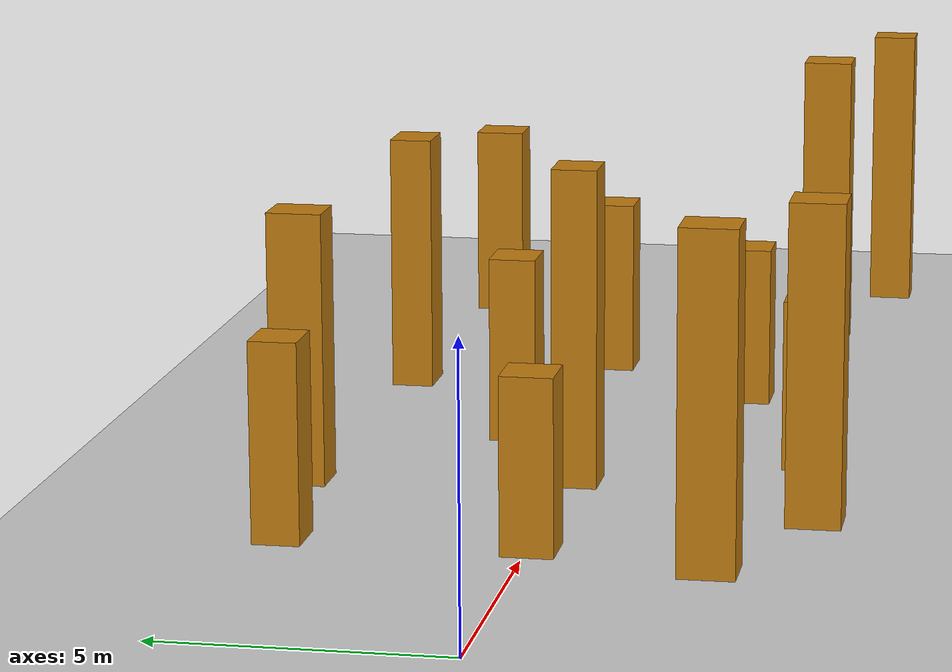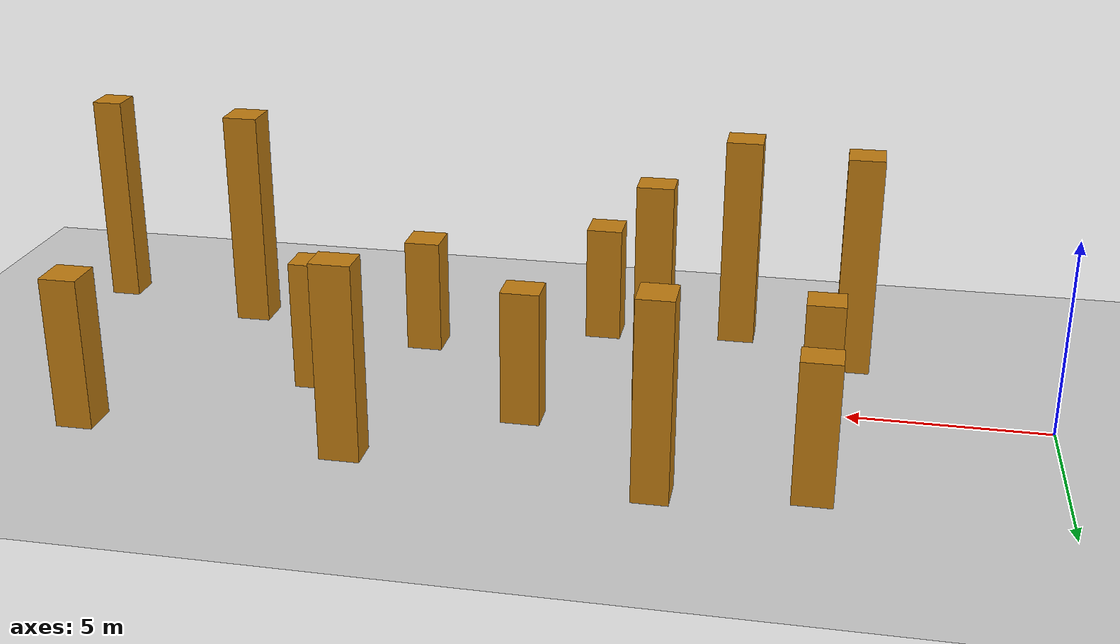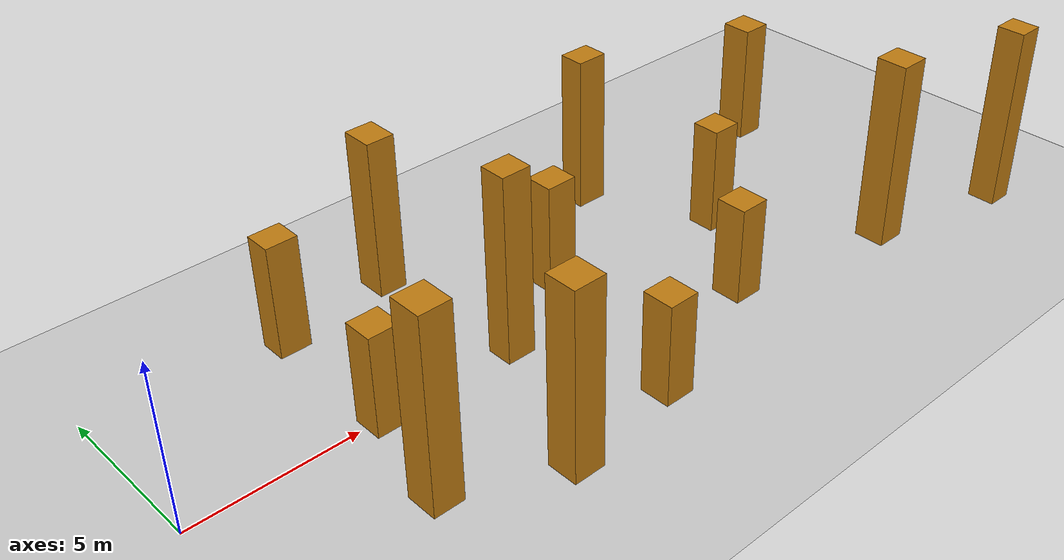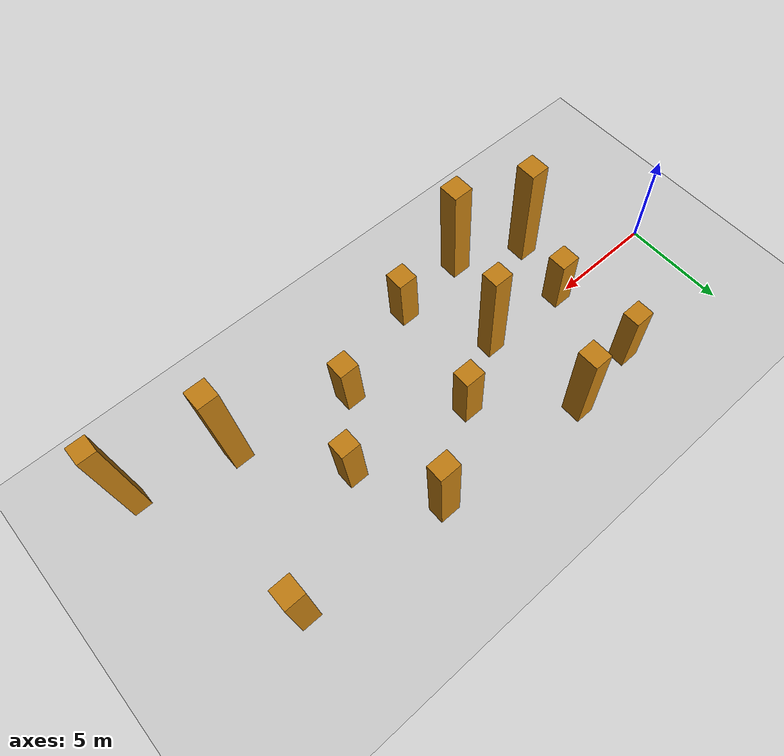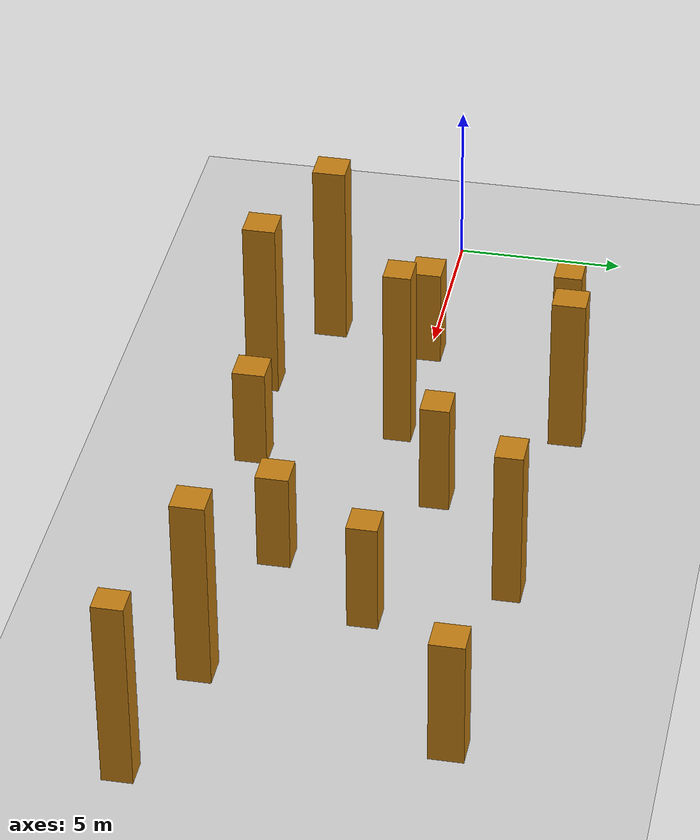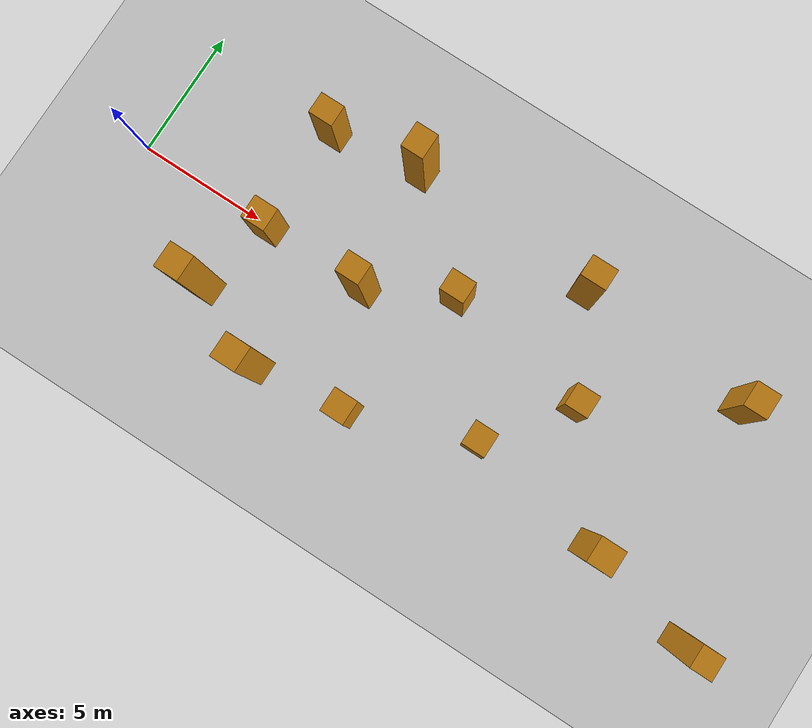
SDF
<sdf version="1.7">
 <world name="default">
  <light name="sun" type="directional">
   <pose>0 0 10 0 -0 0</pose>
   <diffuse>0.8 0.8 0.8 1</diffuse>
   <specular>0.2 0.2 0.2 1</specular>
   <attenuation>
    <range>1000</range>
    <constant>0.9</constant>
    <linear>0.01</linear>
    <quadratic>0.001</quadratic>
   </attenuation>
   <direction>-0.5 0.1 -0.9</direction>
   <spot><inner_angle>0</inner_angle><outer_angle>0</outer_angle><falloff>0</falloff></spot>
  </light>
  <model name="ground_plane">
   <static>1</static>
   <link name="link">
    <collision name="collision">
     <geometry><plane><normal>0 0 1</normal><size>100 100</size></plane></geometry>
     <surface>
      <contact><collide_bitmask>65535</collide_bitmask></contact>
      <friction><ode><mu>100</mu><mu2>50</mu2></ode></friction>
     </surface>
    </collision>
    <visual name="visual">
     <cast_shadows>0</cast_shadows>
     <geometry><plane><normal>0 0 1</normal><size>100 100</size></plane></geometry>
     <material>
      <script><uri>file://media/materials/scripts/gazebo.material</uri><name>Gazebo/Grey</name></script>
     </material>
    </visual>
   </link>
  </model>
  <gravity>0 0 -9.8</gravity>
  <magnetic_field>6e-06 2.3e-05 -4.2e-05</magnetic_field>
  <atmosphere type="adiabatic"/>
  <physics type="ode">
   <max_step_size>0.001</max_step_size>
   <real_time_factor>1</real_time_factor>
   <real_time_update_rate>1000</real_time_update_rate>
  </physics>
  <scene><ambient>0.4 0.4 0.4 1</ambient><background>0.7 0.7 0.7 1</background><shadows>1</shadows></scene>
  <spherical_coordinates>
   <surface_model>EARTH_WGS84</surface_model>
   <latitude_deg>0</latitude_deg>
   <longitude_deg>0</longitude_deg>
   <elevation>0</elevation>
   <heading_deg>0</heading_deg>
  </spherical_coordinates>
  <plugin name="gazebo_octomap" filename="libBuildOctomapPlugin.so"/>
  <model name="model0">
   <link name="link">
    <inertial>
     <mass>1</mass>
     <inertia>
      <ixx>0.166667</ixx>
      <ixy>0</ixy>
      <ixz>0</ixz>
      <iyy>0.166667</iyy>
      <iyz>0</iyz>
      <izz>0.166667</izz>
     </inertia>
    </inertial>
    <visual name="visual">
     <geometry><box><size>0.9245468864348694 0.9799685357493607 5.8250507621969785</size></box></geometry>
     <material>
      <script><name>Gazebo/Grey</name><uri>file://media/materials/scripts/gazebo.material</uri></script>
      <shader type="pixel"><normal_map>__default__</normal_map></shader>
      <ambient>0.757 0.49 0.067 1</ambient>
      <diffuse>0.7 0.7 0.7 1</diffuse>
      <specular>0.01 0.01 0.01 1</specular>
      <emissive>0 0 0 1</emissive>
     </material>
    </visual>
    <collision name="collision">
     <geometry><box><size>0.9245468864348694 0.9799685357493607 5.8250507621969785</size></box></geometry>
     <surface>
      <friction>
       <ode><mu>1</mu><mu2>1</mu2><fdir1>0 0 0</fdir1><slip1>0</slip1><slip2>0</slip2></ode>
       <torsional>
        <coefficient>1</coefficient>
        <patch_radius>0</patch_radius>
        <surface_radius>0</surface_radius>
        <use_patch_radius>1</use_patch_radius>
        <ode><slip>0</slip></ode>
       </torsional>
      </friction>
      <bounce><restitution_coefficient>0</restitution_coefficient><threshold>1e+06</threshold></bounce>
      <contact>
       <collide_without_contact>0</collide_without_contact>
       <collide_without_contact_bitmask>1</collide_without_contact_bitmask>
       <collide_bitmask>1</collide_bitmask>
       <ode>
        <soft_cfm>0</soft_cfm>
        <soft_erp>0.2</soft_erp>
        <kp>1e+13</kp>
        <kd>1</kd>
        <max_vel>0.01</max_vel>
        <min_depth>0</min_depth>
       </ode>
       <bullet>
        <split_impulse>1</split_impulse>
        <split_impulse_penetration_threshold>-0.01</split_impulse_penetration_threshold>
        <soft_cfm>0</soft_cfm>
        <soft_erp>0.2</soft_erp>
        <kp>1e+13</kp>
        <kd>1</kd>
       </bullet>
      </contact>
     </surface>
    </collision>
   </link>
   <static>0</static>
   <pose>4.91657127349023 -3.149675235952216 2.9125253810984892 0.0 0.0 0.0</pose>
  </model>
  <model name="model1">
   <link name="link">
    <inertial>
     <mass>1</mass>
     <inertia>
      <ixx>0.166667</ixx>
      <ixy>0</ixy>
      <ixz>0</ixz>
      <iyy>0.166667</iyy>
      <iyz>0</iyz>
      <izz>0.166667</izz>
     </inertia>
    </inertial>
    <visual name="visual">
     <geometry><box><size>0.8094975931079442 0.8614908476364517 5.785670933126569</size></box></geometry>
     <material>
      <script><name>Gazebo/Grey</name><uri>file://media/materials/scripts/gazebo.material</uri></script>
      <shader type="pixel"><normal_map>__default__</normal_map></shader>
      <ambient>0.757 0.49 0.067 1</ambient>
      <diffuse>0.7 0.7 0.7 1</diffuse>
      <specular>0.01 0.01 0.01 1</specular>
      <emissive>0 0 0 1</emissive>
     </material>
    </visual>
    <collision name="collision">
     <geometry><box><size>0.8094975931079442 0.8614908476364517 5.785670933126569</size></box></geometry>
     <surface>
      <friction>
       <ode><mu>1</mu><mu2>1</mu2><fdir1>0 0 0</fdir1><slip1>0</slip1><slip2>0</slip2></ode>
       <torsional>
        <coefficient>1</coefficient>
        <patch_radius>0</patch_radius>
        <surface_radius>0</surface_radius>
        <use_patch_radius>1</use_patch_radius>
        <ode><slip>0</slip></ode>
       </torsional>
      </friction>
      <bounce><restitution_coefficient>0</restitution_coefficient><threshold>1e+06</threshold></bounce>
      <contact>
       <collide_without_contact>0</collide_without_contact>
       <collide_without_contact_bitmask>1</collide_without_contact_bitmask>
       <collide_bitmask>1</collide_bitmask>
       <ode>
        <soft_cfm>0</soft_cfm>
        <soft_erp>0.2</soft_erp>
        <kp>1e+13</kp>
        <kd>1</kd>
        <max_vel>0.01</max_vel>
        <min_depth>0</min_depth>
       </ode>
       <bullet>
        <split_impulse>1</split_impulse>
        <split_impulse_penetration_threshold>-0.01</split_impulse_penetration_threshold>
        <soft_cfm>0</soft_cfm>
        <soft_erp>0.2</soft_erp>
        <kp>1e+13</kp>
        <kd>1</kd>
       </bullet>
      </contact>
     </surface>
    </collision>
   </link>
   <static>0</static>
   <pose>25.97113430020224 -4.56200326462055 2.8928354665632847 0.0 0.0 0.0</pose>
  </model>
  <model name="model2">
   <link name="link">
    <inertial>
     <mass>1</mass>
     <inertia>
      <ixx>0.166667</ixx>
      <ixy>0</ixy>
      <ixz>0</ixz>
      <iyy>0.166667</iyy>
      <iyz>0</iyz>
      <izz>0.166667</izz>
     </inertia>
    </inertial>
    <visual name="visual">
     <geometry><box><size>0.9304323894319075 0.954891832380665 5.882199779048345</size></box></geometry>
     <material>
      <script><name>Gazebo/Grey</name><uri>file://media/materials/scripts/gazebo.material</uri></script>
      <shader type="pixel"><normal_map>__default__</normal_map></shader>
      <ambient>0.757 0.49 0.067 1</ambient>
      <diffuse>0.7 0.7 0.7 1</diffuse>
      <specular>0.01 0.01 0.01 1</specular>
      <emissive>0 0 0 1</emissive>
     </material>
    </visual>
    <collision name="collision">
     <geometry><box><size>0.9304323894319075 0.954891832380665 5.882199779048345</size></box></geometry>
     <surface>
      <friction>
       <ode><mu>1</mu><mu2>1</mu2><fdir1>0 0 0</fdir1><slip1>0</slip1><slip2>0</slip2></ode>
       <torsional>
        <coefficient>1</coefficient>
        <patch_radius>0</patch_radius>
        <surface_radius>0</surface_radius>
        <use_patch_radius>1</use_patch_radius>
        <ode><slip>0</slip></ode>
       </torsional>
      </friction>
      <bounce><restitution_coefficient>0</restitution_coefficient><threshold>1e+06</threshold></bounce>
      <contact>
       <collide_without_contact>0</collide_without_contact>
       <collide_without_contact_bitmask>1</collide_without_contact_bitmask>
       <collide_bitmask>1</collide_bitmask>
       <ode>
        <soft_cfm>0</soft_cfm>
        <soft_erp>0.2</soft_erp>
        <kp>1e+13</kp>
        <kd>1</kd>
        <max_vel>0.01</max_vel>
        <min_depth>0</min_depth>
       </ode>
       <bullet>
        <split_impulse>1</split_impulse>
        <split_impulse_penetration_threshold>-0.01</split_impulse_penetration_threshold>
        <soft_cfm>0</soft_cfm>
        <soft_erp>0.2</soft_erp>
        <kp>1e+13</kp>
        <kd>1</kd>
       </bullet>
      </contact>
     </surface>
    </collision>
   </link>
   <static>0</static>
   <pose>21.612293036194462 -3.5162456242971727 2.9410998895241725 0.0 0.0 0.0</pose>
  </model>
  <model name="model3">
   <link name="link">
    <inertial>
     <mass>1</mass>
     <inertia>
      <ixx>0.166667</ixx>
      <ixy>0</ixy>
      <ixz>0</ixz>
      <iyy>0.166667</iyy>
      <iyz>0</iyz>
      <izz>0.166667</izz>
     </inertia>
    </inertial>
    <visual name="visual">
     <geometry><box><size>0.9411733951794561 0.956712448907741 3.115908377638633</size></box></geometry>
     <material>
      <script><name>Gazebo/Grey</name><uri>file://media/materials/scripts/gazebo.material</uri></script>
      <shader type="pixel"><normal_map>__default__</normal_map></shader>
      <ambient>0.757 0.49 0.067 1</ambient>
      <diffuse>0.7 0.7 0.7 1</diffuse>
      <specular>0.01 0.01 0.01 1</specular>
      <emissive>0 0 0 1</emissive>
     </material>
    </visual>
    <collision name="collision">
     <geometry><box><size>0.9411733951794561 0.956712448907741 3.115908377638633</size></box></geometry>
     <surface>
      <friction>
       <ode><mu>1</mu><mu2>1</mu2><fdir1>0 0 0</fdir1><slip1>0</slip1><slip2>0</slip2></ode>
       <torsional>
        <coefficient>1</coefficient>
        <patch_radius>0</patch_radius>
        <surface_radius>0</surface_radius>
        <use_patch_radius>1</use_patch_radius>
        <ode><slip>0</slip></ode>
       </torsional>
      </friction>
      <bounce><restitution_coefficient>0</restitution_coefficient><threshold>1e+06</threshold></bounce>
      <contact>
       <collide_without_contact>0</collide_without_contact>
       <collide_without_contact_bitmask>1</collide_without_contact_bitmask>
       <collide_bitmask>1</collide_bitmask>
       <ode>
        <soft_cfm>0</soft_cfm>
        <soft_erp>0.2</soft_erp>
        <kp>1e+13</kp>
        <kd>1</kd>
        <max_vel>0.01</max_vel>
        <min_depth>0</min_depth>
       </ode>
       <bullet>
        <split_impulse>1</split_impulse>
        <split_impulse_penetration_threshold>-0.01</split_impulse_penetration_threshold>
        <soft_cfm>0</soft_cfm>
        <soft_erp>0.2</soft_erp>
        <kp>1e+13</kp>
        <kd>1</kd>
       </bullet>
      </contact>
     </surface>
    </collision>
   </link>
   <static>0</static>
   <pose>11.680551351245896 -4.154394663490609 1.5579541888193165 0.0 0.0 0.0</pose>
  </model>
  <model name="model4">
   <link name="link">
    <inertial>
     <mass>1</mass>
     <inertia>
      <ixx>0.166667</ixx>
      <ixy>0</ixy>
      <ixz>0</ixz>
      <iyy>0.166667</iyy>
      <iyz>0</iyz>
      <izz>0.166667</izz>
     </inertia>
    </inertial>
    <visual name="visual">
     <geometry><box><size>0.9708302433837406 0.8587472462434802 3.449739271556486</size></box></geometry>
     <material>
      <script><name>Gazebo/Grey</name><uri>file://media/materials/scripts/gazebo.material</uri></script>
      <shader type="pixel"><normal_map>__default__</normal_map></shader>
      <ambient>0.757 0.49 0.067 1</ambient>
      <diffuse>0.7 0.7 0.7 1</diffuse>
      <specular>0.01 0.01 0.01 1</specular>
      <emissive>0 0 0 1</emissive>
     </material>
    </visual>
    <collision name="collision">
     <geometry><box><size>0.9708302433837406 0.8587472462434802 3.449739271556486</size></box></geometry>
     <surface>
      <friction>
       <ode><mu>1</mu><mu2>1</mu2><fdir1>0 0 0</fdir1><slip1>0</slip1><slip2>0</slip2></ode>
       <torsional>
        <coefficient>1</coefficient>
        <patch_radius>0</patch_radius>
        <surface_radius>0</surface_radius>
        <use_patch_radius>1</use_patch_radius>
        <ode><slip>0</slip></ode>
       </torsional>
      </friction>
      <bounce><restitution_coefficient>0</restitution_coefficient><threshold>1e+06</threshold></bounce>
      <contact>
       <collide_without_contact>0</collide_without_contact>
       <collide_without_contact_bitmask>1</collide_without_contact_bitmask>
       <collide_bitmask>1</collide_bitmask>
       <ode>
        <soft_cfm>0</soft_cfm>
        <soft_erp>0.2</soft_erp>
        <kp>1e+13</kp>
        <kd>1</kd>
        <max_vel>0.01</max_vel>
        <min_depth>0</min_depth>
       </ode>
       <bullet>
        <split_impulse>1</split_impulse>
        <split_impulse_penetration_threshold>-0.01</split_impulse_penetration_threshold>
        <soft_cfm>0</soft_cfm>
        <soft_erp>0.2</soft_erp>
        <kp>1e+13</kp>
        <kd>1</kd>
       </bullet>
      </contact>
     </surface>
    </collision>
   </link>
   <static>0</static>
   <pose>12.866010010202718 1.4851066994678463 1.724869635778243 0.0 0.0 0.0</pose>
  </model>
  <model name="model5">
   <link name="link">
    <inertial>
     <mass>1</mass>
     <inertia>
      <ixx>0.166667</ixx>
      <ixy>0</ixy>
      <ixz>0</ixz>
      <iyy>0.166667</iyy>
      <iyz>0</iyz>
      <izz>0.166667</izz>
     </inertia>
    </inertial>
    <visual name="visual">
     <geometry><box><size>0.8726695198401134 0.9861306414366682 4.9308005360674585</size></box></geometry>
     <material>
      <script><name>Gazebo/Grey</name><uri>file://media/materials/scripts/gazebo.material</uri></script>
      <shader type="pixel"><normal_map>__default__</normal_map></shader>
      <ambient>0.757 0.49 0.067 1</ambient>
      <diffuse>0.7 0.7 0.7 1</diffuse>
      <specular>0.01 0.01 0.01 1</specular>
      <emissive>0 0 0 1</emissive>
     </material>
    </visual>
    <collision name="collision">
     <geometry><box><size>0.8726695198401134 0.9861306414366682 4.9308005360674585</size></box></geometry>
     <surface>
      <friction>
       <ode><mu>1</mu><mu2>1</mu2><fdir1>0 0 0</fdir1><slip1>0</slip1><slip2>0</slip2></ode>
       <torsional>
        <coefficient>1</coefficient>
        <patch_radius>0</patch_radius>
        <surface_radius>0</surface_radius>
        <use_patch_radius>1</use_patch_radius>
        <ode><slip>0</slip></ode>
       </torsional>
      </friction>
      <bounce><restitution_coefficient>0</restitution_coefficient><threshold>1e+06</threshold></bounce>
      <contact>
       <collide_without_contact>0</collide_without_contact>
       <collide_without_contact_bitmask>1</collide_without_contact_bitmask>
       <collide_bitmask>1</collide_bitmask>
       <ode>
        <soft_cfm>0</soft_cfm>
        <soft_erp>0.2</soft_erp>
        <kp>1e+13</kp>
        <kd>1</kd>
        <max_vel>0.01</max_vel>
        <min_depth>0</min_depth>
       </ode>
       <bullet>
        <split_impulse>1</split_impulse>
        <split_impulse_penetration_threshold>-0.01</split_impulse_penetration_threshold>
        <soft_cfm>0</soft_cfm>
        <soft_erp>0.2</soft_erp>
        <kp>1e+13</kp>
        <kd>1</kd>
       </bullet>
      </contact>
     </surface>
    </collision>
   </link>
   <static>0</static>
   <pose>9.235395653920735 4.713827173762988 2.4654002680337292 0.0 0.0 0.0</pose>
  </model>
  <model name="model6">
   <link name="link">
    <inertial>
     <mass>1</mass>
     <inertia>
      <ixx>0.166667</ixx>
      <ixy>0</ixy>
      <ixz>0</ixz>
      <iyy>0.166667</iyy>
      <iyz>0</iyz>
      <izz>0.166667</izz>
     </inertia>
    </inertial>
    <visual name="visual">
     <geometry><box><size>0.9307304428948192 0.9754103424076 3.8835986321779155</size></box></geometry>
     <material>
      <script><name>Gazebo/Grey</name><uri>file://media/materials/scripts/gazebo.material</uri></script>
      <shader type="pixel"><normal_map>__default__</normal_map></shader>
      <ambient>0.757 0.49 0.067 1</ambient>
      <diffuse>0.7 0.7 0.7 1</diffuse>
      <specular>0.01 0.01 0.01 1</specular>
      <emissive>0 0 0 1</emissive>
     </material>
    </visual>
    <collision name="collision">
     <geometry><box><size>0.9307304428948192 0.9754103424076 3.8835986321779155</size></box></geometry>
     <surface>
      <friction>
       <ode><mu>1</mu><mu2>1</mu2><fdir1>0 0 0</fdir1><slip1>0</slip1><slip2>0</slip2></ode>
       <torsional>
        <coefficient>1</coefficient>
        <patch_radius>0</patch_radius>
        <surface_radius>0</surface_radius>
        <use_patch_radius>1</use_patch_radius>
        <ode><slip>0</slip></ode>
       </torsional>
      </friction>
      <bounce><restitution_coefficient>0</restitution_coefficient><threshold>1e+06</threshold></bounce>
      <contact>
       <collide_without_contact>0</collide_without_contact>
       <collide_without_contact_bitmask>1</collide_without_contact_bitmask>
       <collide_bitmask>1</collide_bitmask>
       <ode>
        <soft_cfm>0</soft_cfm>
        <soft_erp>0.2</soft_erp>
        <kp>1e+13</kp>
        <kd>1</kd>
        <max_vel>0.01</max_vel>
        <min_depth>0</min_depth>
       </ode>
       <bullet>
        <split_impulse>1</split_impulse>
        <split_impulse_penetration_threshold>-0.01</split_impulse_penetration_threshold>
        <soft_cfm>0</soft_cfm>
        <soft_erp>0.2</soft_erp>
        <kp>1e+13</kp>
        <kd>1</kd>
       </bullet>
      </contact>
     </surface>
    </collision>
   </link>
   <static>0</static>
   <pose>23.541790473044852 3.71149347842886 1.9417993160889577 0.0 0.0 0.0</pose>
  </model>
  <model name="model7">
   <link name="link">
    <inertial>
     <mass>1</mass>
     <inertia>
      <ixx>0.166667</ixx>
      <ixy>0</ixy>
      <ixz>0</ixz>
      <iyy>0.166667</iyy>
      <iyz>0</iyz>
      <izz>0.166667</izz>
     </inertia>
    </inertial>
    <visual name="visual">
     <geometry><box><size>0.9135366654202391 0.8728839715279896 3.381219729205218</size></box></geometry>
     <material>
      <script><name>Gazebo/Grey</name><uri>file://media/materials/scripts/gazebo.material</uri></script>
      <shader type="pixel"><normal_map>__default__</normal_map></shader>
      <ambient>0.757 0.49 0.067 1</ambient>
      <diffuse>0.7 0.7 0.7 1</diffuse>
      <specular>0.01 0.01 0.01 1</specular>
      <emissive>0 0 0 1</emissive>
     </material>
    </visual>
    <collision name="collision">
     <geometry><box><size>0.9135366654202391 0.8728839715279896 3.381219729205218</size></box></geometry>
     <surface>
      <friction>
       <ode><mu>1</mu><mu2>1</mu2><fdir1>0 0 0</fdir1><slip1>0</slip1><slip2>0</slip2></ode>
       <torsional>
        <coefficient>1</coefficient>
        <patch_radius>0</patch_radius>
        <surface_radius>0</surface_radius>
        <use_patch_radius>1</use_patch_radius>
        <ode><slip>0</slip></ode>
       </torsional>
      </friction>
      <bounce><restitution_coefficient>0</restitution_coefficient><threshold>1e+06</threshold></bounce>
      <contact>
       <collide_without_contact>0</collide_without_contact>
       <collide_without_contact_bitmask>1</collide_without_contact_bitmask>
       <collide_bitmask>1</collide_bitmask>
       <ode>
        <soft_cfm>0</soft_cfm>
        <soft_erp>0.2</soft_erp>
        <kp>1e+13</kp>
        <kd>1</kd>
        <max_vel>0.01</max_vel>
        <min_depth>0</min_depth>
       </ode>
       <bullet>
        <split_impulse>1</split_impulse>
        <split_impulse_penetration_threshold>-0.01</split_impulse_penetration_threshold>
        <soft_cfm>0</soft_cfm>
        <soft_erp>0.2</soft_erp>
        <kp>1e+13</kp>
        <kd>1</kd>
       </bullet>
      </contact>
     </surface>
    </collision>
   </link>
   <static>0</static>
   <pose>18.533778692887495 0.49658312378237834 1.690609864602609 0.0 0.0 0.0</pose>
  </model>
  <model name="model8">
   <link name="link">
    <inertial>
     <mass>1</mass>
     <inertia>
      <ixx>0.166667</ixx>
      <ixy>0</ixy>
      <ixz>0</ixz>
      <iyy>0.166667</iyy>
      <iyz>0</iyz>
      <izz>0.166667</izz>
     </inertia>
    </inertial>
    <visual name="visual">
     <geometry><box><size>0.9027583617989977 0.813329878246158 5.7416186322516065</size></box></geometry>
     <material>
      <script><name>Gazebo/Grey</name><uri>file://media/materials/scripts/gazebo.material</uri></script>
      <shader type="pixel"><normal_map>__default__</normal_map></shader>
      <ambient>0.757 0.49 0.067 1</ambient>
      <diffuse>0.7 0.7 0.7 1</diffuse>
      <specular>0.01 0.01 0.01 1</specular>
      <emissive>0 0 0 1</emissive>
     </material>
    </visual>
    <collision name="collision">
     <geometry><box><size>0.9027583617989977 0.813329878246158 5.7416186322516065</size></box></geometry>
     <surface>
      <friction>
       <ode><mu>1</mu><mu2>1</mu2><fdir1>0 0 0</fdir1><slip1>0</slip1><slip2>0</slip2></ode>
       <torsional>
        <coefficient>1</coefficient>
        <patch_radius>0</patch_radius>
        <surface_radius>0</surface_radius>
        <use_patch_radius>1</use_patch_radius>
        <ode><slip>0</slip></ode>
       </torsional>
      </friction>
      <bounce><restitution_coefficient>0</restitution_coefficient><threshold>1e+06</threshold></bounce>
      <contact>
       <collide_without_contact>0</collide_without_contact>
       <collide_without_contact_bitmask>1</collide_without_contact_bitmask>
       <collide_bitmask>1</collide_bitmask>
       <ode>
        <soft_cfm>0</soft_cfm>
        <soft_erp>0.2</soft_erp>
        <kp>1e+13</kp>
        <kd>1</kd>
        <max_vel>0.01</max_vel>
        <min_depth>0</min_depth>
       </ode>
       <bullet>
        <split_impulse>1</split_impulse>
        <split_impulse_penetration_threshold>-0.01</split_impulse_penetration_threshold>
        <soft_cfm>0</soft_cfm>
        <soft_erp>0.2</soft_erp>
        <kp>1e+13</kp>
        <kd>1</kd>
       </bullet>
      </contact>
     </surface>
    </collision>
   </link>
   <static>0</static>
   <pose>9.873461842255075 -0.16349447386108018 2.8708093161258033 0.0 0.0 0.0</pose>
  </model>
  <model name="model9">
   <link name="link">
    <inertial>
     <mass>1</mass>
     <inertia>
      <ixx>0.166667</ixx>
      <ixy>0</ixy>
      <ixz>0</ixz>
      <iyy>0.166667</iyy>
      <iyz>0</iyz>
      <izz>0.166667</izz>
     </inertia>
    </inertial>
    <visual name="visual">
     <geometry><box><size>0.9905415794681908 0.8017475541695664 4.93507596254668</size></box></geometry>
     <material>
      <script><name>Gazebo/Grey</name><uri>file://media/materials/scripts/gazebo.material</uri></script>
      <shader type="pixel"><normal_map>__default__</normal_map></shader>
      <ambient>0.757 0.49 0.067 1</ambient>
      <diffuse>0.7 0.7 0.7 1</diffuse>
      <specular>0.01 0.01 0.01 1</specular>
      <emissive>0 0 0 1</emissive>
     </material>
    </visual>
    <collision name="collision">
     <geometry><box><size>0.9905415794681908 0.8017475541695664 4.93507596254668</size></box></geometry>
     <surface>
      <friction>
       <ode><mu>1</mu><mu2>1</mu2><fdir1>0 0 0</fdir1><slip1>0</slip1><slip2>0</slip2></ode>
       <torsional>
        <coefficient>1</coefficient>
        <patch_radius>0</patch_radius>
        <surface_radius>0</surface_radius>
        <use_patch_radius>1</use_patch_radius>
        <ode><slip>0</slip></ode>
       </torsional>
      </friction>
      <bounce><restitution_coefficient>0</restitution_coefficient><threshold>1e+06</threshold></bounce>
      <contact>
       <collide_without_contact>0</collide_without_contact>
       <collide_without_contact_bitmask>1</collide_without_contact_bitmask>
       <collide_bitmask>1</collide_bitmask>
       <ode>
        <soft_cfm>0</soft_cfm>
        <soft_erp>0.2</soft_erp>
        <kp>1e+13</kp>
        <kd>1</kd>
        <max_vel>0.01</max_vel>
        <min_depth>0</min_depth>
       </ode>
       <bullet>
        <split_impulse>1</split_impulse>
        <split_impulse_penetration_threshold>-0.01</split_impulse_penetration_threshold>
        <soft_cfm>0</soft_cfm>
        <soft_erp>0.2</soft_erp>
        <kp>1e+13</kp>
        <kd>1</kd>
       </bullet>
      </contact>
     </surface>
    </collision>
   </link>
   <static>0</static>
   <pose>16.65531907665249 4.192021346034421 2.46753798127334 0.0 0.0 0.0</pose>
  </model>
  <model name="model10">
   <link name="link">
    <inertial>
     <mass>1</mass>
     <inertia>
      <ixx>0.166667</ixx>
      <ixy>0</ixy>
      <ixz>0</ixz>
      <iyy>0.166667</iyy>
      <iyz>0</iyz>
      <izz>0.166667</izz>
     </inertia>
    </inertial>
    <visual name="visual">
     <geometry><box><size>0.9329838212959622 0.9488697097575558 3.0391733984005875</size></box></geometry>
     <material>
      <script><name>Gazebo/Grey</name><uri>file://media/materials/scripts/gazebo.material</uri></script>
      <shader type="pixel"><normal_map>__default__</normal_map></shader>
      <ambient>0.757 0.49 0.067 1</ambient>
      <diffuse>0.7 0.7 0.7 1</diffuse>
      <specular>0.01 0.01 0.01 1</specular>
      <emissive>0 0 0 1</emissive>
     </material>
    </visual>
    <collision name="collision">
     <geometry><box><size>0.9329838212959622 0.9488697097575558 3.0391733984005875</size></box></geometry>
     <surface>
      <friction>
       <ode><mu>1</mu><mu2>1</mu2><fdir1>0 0 0</fdir1><slip1>0</slip1><slip2>0</slip2></ode>
       <torsional>
        <coefficient>1</coefficient>
        <patch_radius>0</patch_radius>
        <surface_radius>0</surface_radius>
        <use_patch_radius>1</use_patch_radius>
        <ode><slip>0</slip></ode>
       </torsional>
      </friction>
      <bounce><restitution_coefficient>0</restitution_coefficient><threshold>1e+06</threshold></bounce>
      <contact>
       <collide_without_contact>0</collide_without_contact>
       <collide_without_contact_bitmask>1</collide_without_contact_bitmask>
       <collide_bitmask>1</collide_bitmask>
       <ode>
        <soft_cfm>0</soft_cfm>
        <soft_erp>0.2</soft_erp>
        <kp>1e+13</kp>
        <kd>1</kd>
        <max_vel>0.01</max_vel>
        <min_depth>0</min_depth>
       </ode>
       <bullet>
        <split_impulse>1</split_impulse>
        <split_impulse_penetration_threshold>-0.01</split_impulse_penetration_threshold>
        <soft_cfm>0</soft_cfm>
        <soft_erp>0.2</soft_erp>
        <kp>1e+13</kp>
        <kd>1</kd>
       </bullet>
      </contact>
     </surface>
    </collision>
   </link>
   <static>0</static>
   <pose>16.318310245954702 -2.4670922472444867 1.5195866992002938 0.0 0.0 0.0</pose>
  </model>
  <model name="model11">
   <link name="link">
    <inertial>
     <mass>1</mass>
     <inertia>
      <ixx>0.166667</ixx>
      <ixy>0</ixy>
      <ixz>0</ixz>
      <iyy>0.166667</iyy>
      <iyz>0</iyz>
      <izz>0.166667</izz>
     </inertia>
    </inertial>
    <visual name="visual">
     <geometry><box><size>0.9535126802911742 0.8343321418570159 3.5061886080168545</size></box></geometry>
     <material>
      <script><name>Gazebo/Grey</name><uri>file://media/materials/scripts/gazebo.material</uri></script>
      <shader type="pixel"><normal_map>__default__</normal_map></shader>
      <ambient>0.757 0.49 0.067 1</ambient>
      <diffuse>0.7 0.7 0.7 1</diffuse>
      <specular>0.01 0.01 0.01 1</specular>
      <emissive>0 0 0 1</emissive>
     </material>
    </visual>
    <collision name="collision">
     <geometry><box><size>0.9535126802911742 0.8343321418570159 3.5061886080168545</size></box></geometry>
     <surface>
      <friction>
       <ode><mu>1</mu><mu2>1</mu2><fdir1>0 0 0</fdir1><slip1>0</slip1><slip2>0</slip2></ode>
       <torsional>
        <coefficient>1</coefficient>
        <patch_radius>0</patch_radius>
        <surface_radius>0</surface_radius>
        <use_patch_radius>1</use_patch_radius>
        <ode><slip>0</slip></ode>
       </torsional>
      </friction>
      <bounce><restitution_coefficient>0</restitution_coefficient><threshold>1e+06</threshold></bounce>
      <contact>
       <collide_without_contact>0</collide_without_contact>
       <collide_without_contact_bitmask>1</collide_without_contact_bitmask>
       <collide_bitmask>1</collide_bitmask>
       <ode>
        <soft_cfm>0</soft_cfm>
        <soft_erp>0.2</soft_erp>
        <kp>1e+13</kp>
        <kd>1</kd>
        <max_vel>0.01</max_vel>
        <min_depth>0</min_depth>
       </ode>
       <bullet>
        <split_impulse>1</split_impulse>
        <split_impulse_penetration_threshold>-0.01</split_impulse_penetration_threshold>
        <soft_cfm>0</soft_cfm>
        <soft_erp>0.2</soft_erp>
        <kp>1e+13</kp>
        <kd>1</kd>
       </bullet>
      </contact>
     </surface>
    </collision>
   </link>
   <static>0</static>
   <pose>5.665733578493916 4.201123370648585 1.7530943040084273 0.0 0.0 0.0</pose>
  </model>
  <model name="model12">
   <link name="link">
    <inertial>
     <mass>1</mass>
     <inertia>
      <ixx>0.166667</ixx>
      <ixy>0</ixy>
      <ixz>0</ixz>
      <iyy>0.166667</iyy>
      <iyz>0</iyz>
      <izz>0.166667</izz>
     </inertia>
    </inertial>
    <visual name="visual">
     <geometry><box><size>0.9585991992688907 0.9163351893504391 3.086693987469736</size></box></geometry>
     <material>
      <script><name>Gazebo/Grey</name><uri>file://media/materials/scripts/gazebo.material</uri></script>
      <shader type="pixel"><normal_map>__default__</normal_map></shader>
      <ambient>0.757 0.49 0.067 1</ambient>
      <diffuse>0.7 0.7 0.7 1</diffuse>
      <specular>0.01 0.01 0.01 1</specular>
      <emissive>0 0 0 1</emissive>
     </material>
    </visual>
    <collision name="collision">
     <geometry><box><size>0.9585991992688907 0.9163351893504391 3.086693987469736</size></box></geometry>
     <surface>
      <friction>
       <ode><mu>1</mu><mu2>1</mu2><fdir1>0 0 0</fdir1><slip1>0</slip1><slip2>0</slip2></ode>
       <torsional>
        <coefficient>1</coefficient>
        <patch_radius>0</patch_radius>
        <surface_radius>0</surface_radius>
        <use_patch_radius>1</use_patch_radius>
        <ode><slip>0</slip></ode>
       </torsional>
      </friction>
      <bounce><restitution_coefficient>0</restitution_coefficient><threshold>1e+06</threshold></bounce>
      <contact>
       <collide_without_contact>0</collide_without_contact>
       <collide_without_contact_bitmask>1</collide_without_contact_bitmask>
       <collide_bitmask>1</collide_bitmask>
       <ode>
        <soft_cfm>0</soft_cfm>
        <soft_erp>0.2</soft_erp>
        <kp>1e+13</kp>
        <kd>1</kd>
        <max_vel>0.01</max_vel>
        <min_depth>0</min_depth>
       </ode>
       <bullet>
        <split_impulse>1</split_impulse>
        <split_impulse_penetration_threshold>-0.01</split_impulse_penetration_threshold>
        <soft_cfm>0</soft_cfm>
        <soft_erp>0.2</soft_erp>
        <kp>1e+13</kp>
        <kd>1</kd>
       </bullet>
      </contact>
     </surface>
    </collision>
   </link>
   <static>0</static>
   <pose>5.652768012923336 -0.07030671259771815 1.543346993734868 0.0 0.0 0.0</pose>
  </model>
  <model name="model13">
   <link name="link">
    <inertial>
     <mass>1</mass>
     <inertia>
      <ixx>0.166667</ixx>
      <ixy>0</ixy>
      <ixz>0</ixz>
      <iyy>0.166667</iyy>
      <iyz>0</iyz>
      <izz>0.166667</izz>
     </inertia>
    </inertial>
    <visual name="visual">
     <geometry><box><size>0.9628134596011374 0.9646249750186521 5.6595011694573465</size></box></geometry>
     <material>
      <script><name>Gazebo/Grey</name><uri>file://media/materials/scripts/gazebo.material</uri></script>
      <shader type="pixel"><normal_map>__default__</normal_map></shader>
      <ambient>0.757 0.49 0.067 1</ambient>
      <diffuse>0.7 0.7 0.7 1</diffuse>
      <specular>0.01 0.01 0.01 1</specular>
      <emissive>0 0 0 1</emissive>
     </material>
    </visual>
    <collision name="collision">
     <geometry><box><size>0.9628134596011374 0.9646249750186521 5.6595011694573465</size></box></geometry>
     <surface>
      <friction>
       <ode><mu>1</mu><mu2>1</mu2><fdir1>0 0 0</fdir1><slip1>0</slip1><slip2>0</slip2></ode>
       <torsional>
        <coefficient>1</coefficient>
        <patch_radius>0</patch_radius>
        <surface_radius>0</surface_radius>
        <use_patch_radius>1</use_patch_radius>
        <ode><slip>0</slip></ode>
       </torsional>
      </friction>
      <bounce><restitution_coefficient>0</restitution_coefficient><threshold>1e+06</threshold></bounce>
      <contact>
       <collide_without_contact>0</collide_without_contact>
       <collide_without_contact_bitmask>1</collide_without_contact_bitmask>
       <collide_bitmask>1</collide_bitmask>
       <ode>
        <soft_cfm>0</soft_cfm>
        <soft_erp>0.2</soft_erp>
        <kp>1e+13</kp>
        <kd>1</kd>
        <max_vel>0.01</max_vel>
        <min_depth>0</min_depth>
       </ode>
       <bullet>
        <split_impulse>1</split_impulse>
        <split_impulse_penetration_threshold>-0.01</split_impulse_penetration_threshold>
        <soft_cfm>0</soft_cfm>
        <soft_erp>0.2</soft_erp>
        <kp>1e+13</kp>
        <kd>1</kd>
       </bullet>
      </contact>
     </surface>
    </collision>
   </link>
   <static>0</static>
   <pose>8.0612750116101 -4.588419125159778 2.8297505847286732 0.0 0.0 0.0</pose>
  </model>
 </world>
</sdf>
